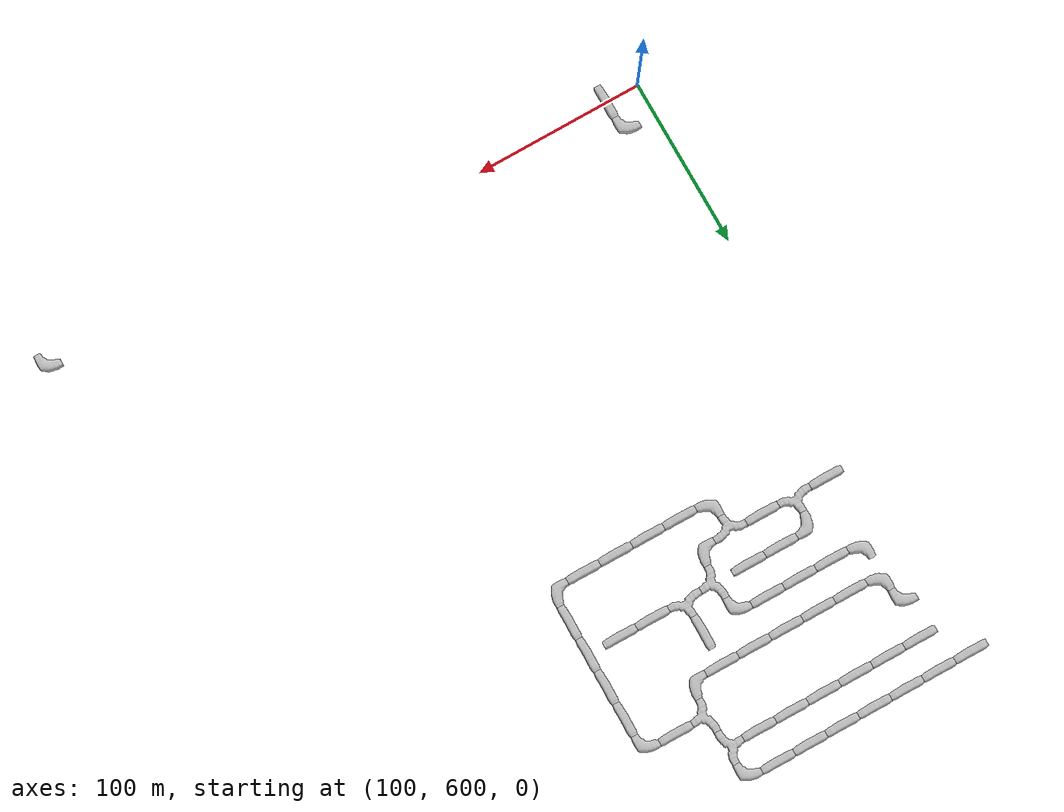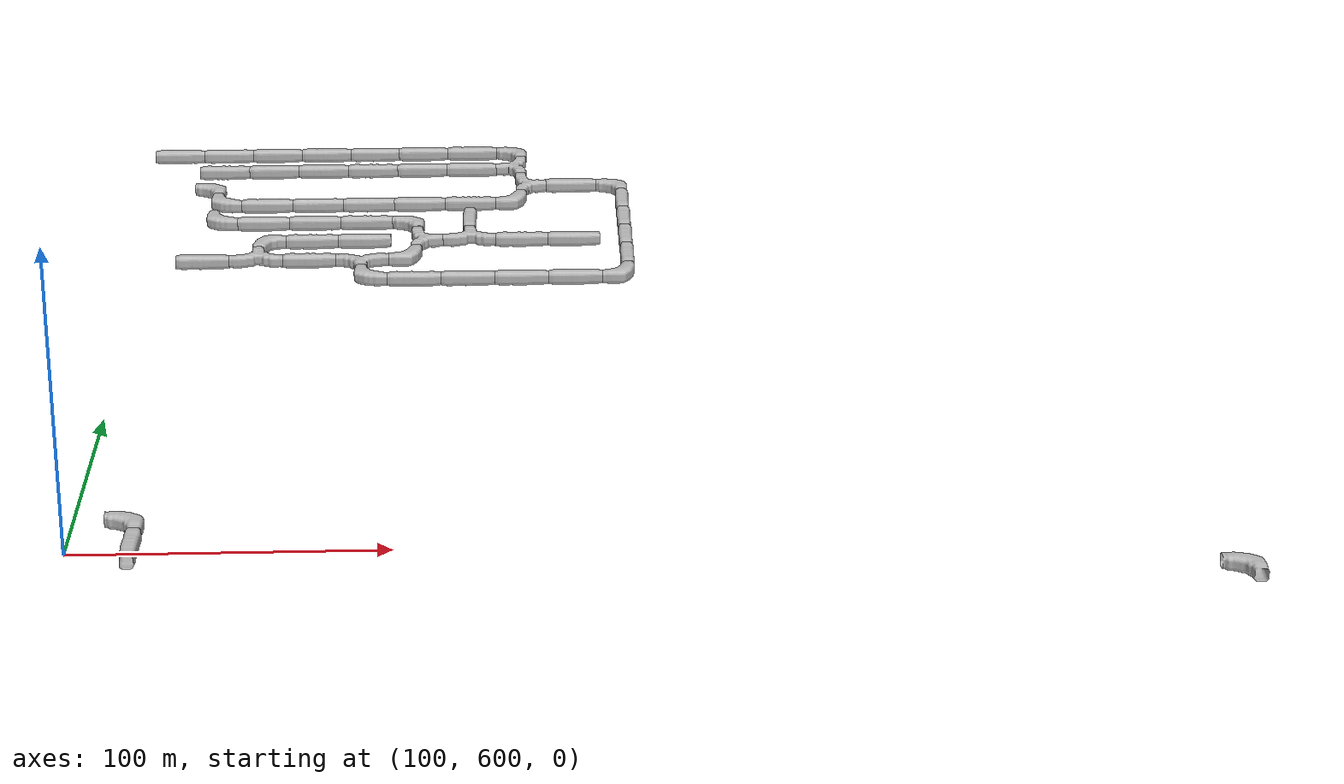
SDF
<sdf version="1.6">
 <world name="cave_32000">
  <include>
   <static>true</static>
   <name>cave_23_29</name>
   <pose>460 580 0 0 0 3.141592653589793</pose>
   <uri>model://cave_L_20m</uri>
  </include>
  <include>
   <static>true</static>
   <name>cave_5_48</name>
   <pose>100 960 0 0 0 1.5707963267948966</pose>
   <uri>model://cave_straight_20m</uri>
  </include>
  <include>
   <static>true</static>
   <name>cave_6_48</name>
   <pose>120 960 0 0 0 1.5707963267948966</pose>
   <uri>model://cave_straight_20m</uri>
  </include>
  <include>
   <static>true</static>
   <name>cave_7_48</name>
   <pose>140 960 0 0 0 1.5707963267948966</pose>
   <uri>model://cave_straight_20m</uri>
  </include>
  <include>
   <static>true</static>
   <name>cave_8_48</name>
   <pose>160 960 0 0 0 1.5707963267948966</pose>
   <uri>model://cave_straight_20m</uri>
  </include>
  <include>
   <static>true</static>
   <name>cave_9_48</name>
   <pose>180 960 0 0 0 1.5707963267948966</pose>
   <uri>model://cave_straight_20m</uri>
  </include>
  <include>
   <static>true</static>
   <name>cave_10_48</name>
   <pose>200 960 0 0 0 1.5707963267948966</pose>
   <uri>model://cave_straight_20m</uri>
  </include>
  <include>
   <static>true</static>
   <name>cave_11_48</name>
   <pose>220 960 0 0 0 1.5707963267948966</pose>
   <uri>model://cave_straight_20m</uri>
  </include>
  <include>
   <static>true</static>
   <name>cave_12_48</name>
   <pose>240 960 0 0 0 3.141592653589793</pose>
   <uri>model://cave_L_20m</uri>
  </include>
  <include>
   <static>true</static>
   <name>cave_12_47</name>
   <pose>240 940 0 0 0 1.5707963267948966</pose>
   <uri>model://cave_3way_20m</uri>
  </include>
  <include>
   <static>true</static>
   <name>cave_12_46</name>
   <pose>240 920 0 0 0 -1.5707963267948966</pose>
   <uri>model://cave_3way_20m</uri>
  </include>
  <include>
   <static>true</static>
   <name>cave_13_46</name>
   <pose>260 920 0 0 0 1.5707963267948966</pose>
   <uri>model://cave_straight_20m</uri>
  </include>
  <include>
   <static>true</static>
   <name>cave_14_46</name>
   <pose>280 920 0 0 0 3.141592653589793</pose>
   <uri>model://cave_L_20m</uri>
  </include>
  <include>
   <static>true</static>
   <name>cave_14_45</name>
   <pose>280 900 0 0 0 0.0</pose>
   <uri>model://cave_straight_20m</uri>
  </include>
  <include>
   <static>true</static>
   <name>cave_14_44</name>
   <pose>280 880 0 0 0 0.0</pose>
   <uri>model://cave_straight_20m</uri>
  </include>
  <include>
   <static>true</static>
   <name>cave_14_43</name>
   <pose>280 860 0 0 0 0.0</pose>
   <uri>model://cave_straight_20m</uri>
  </include>
  <include>
   <static>true</static>
   <name>cave_14_42</name>
   <pose>280 840 0 0 0 0.0</pose>
   <uri>model://cave_straight_20m</uri>
  </include>
  <include>
   <static>true</static>
   <name>cave_14_41</name>
   <pose>280 820 0 0 0 1.5707963267948966</pose>
   <uri>model://cave_L_20m</uri>
  </include>
  <include>
   <static>true</static>
   <name>cave_13_41</name>
   <pose>260 820 0 0 0 1.5707963267948966</pose>
   <uri>model://cave_straight_20m</uri>
  </include>
  <include>
   <static>true</static>
   <name>cave_12_41</name>
   <pose>240 820 0 0 0 1.5707963267948966</pose>
   <uri>model://cave_straight_20m</uri>
  </include>
  <include>
   <static>true</static>
   <name>cave_11_41</name>
   <pose>220 820 0 0 0 1.5707963267948966</pose>
   <uri>model://cave_straight_20m</uri>
  </include>
  <include>
   <static>true</static>
   <name>cave_10_41</name>
   <pose>200 820 0 0 0 1.5707963267948966</pose>
   <uri>model://cave_straight_20m</uri>
  </include>
  <include>
   <static>true</static>
   <name>cave_9_41</name>
   <pose>180 820 0 0 0 0.0</pose>
   <uri>model://cave_L_20m</uri>
  </include>
  <include>
   <static>true</static>
   <name>cave_9_42</name>
   <pose>180 840 0 0 0 3.141592653589793</pose>
   <uri>model://cave_3way_20m</uri>
  </include>
  <include>
   <static>true</static>
   <name>cave_10_42</name>
   <pose>200 840 0 0 0 1.5707963267948966</pose>
   <uri>model://cave_L_20m</uri>
  </include>
  <include>
   <static>true</static>
   <name>cave_10_43</name>
   <pose>200 860 0 0 0 -1.5707963267948966</pose>
   <uri>model://cave_3way_20m</uri>
  </include>
  <include>
   <static>true</static>
   <name>cave_11_43</name>
   <pose>220 860 0 0 0 0.0</pose>
   <uri>model://cave_3way_20m</uri>
  </include>
  <include>
   <static>true</static>
   <name>cave_12_43</name>
   <pose>240 860 0 0 0 1.5707963267948966</pose>
   <uri>model://cave_straight_20m</uri>
  </include>
  <include>
   <static>true</static>
   <name>cave_13_43</name>
   <pose>260 860 0 0 0 1.5707963267948966</pose>
   <uri>model://cave_straight_20m</uri>
  </include>
  <include>
   <static>true</static>
   <name>cave_11_44</name>
   <pose>220 880 0 0 0 0.0</pose>
   <uri>model://cave_straight_20m</uri>
  </include>
  <include>
   <static>true</static>
   <name>cave_10_44</name>
   <pose>200 880 0 0 0 3.141592653589793</pose>
   <uri>model://cave_L_20m</uri>
  </include>
  <include>
   <static>true</static>
   <name>cave_9_44</name>
   <pose>180 880 0 0 0 1.5707963267948966</pose>
   <uri>model://cave_straight_20m</uri>
  </include>
  <include>
   <static>true</static>
   <name>cave_8_44</name>
   <pose>160 880 0 0 0 1.5707963267948966</pose>
   <uri>model://cave_straight_20m</uri>
  </include>
  <include>
   <static>true</static>
   <name>cave_7_44</name>
   <pose>140 880 0 0 0 1.5707963267948966</pose>
   <uri>model://cave_straight_20m</uri>
  </include>
  <include>
   <static>true</static>
   <name>cave_6_44</name>
   <pose>120 880 0 0 0 0.0</pose>
   <uri>model://cave_L_20m</uri>
  </include>
  <include>
   <static>true</static>
   <name>cave_8_42</name>
   <pose>160 840 0 0 0 1.5707963267948966</pose>
   <uri>model://cave_straight_20m</uri>
  </include>
  <include>
   <static>true</static>
   <name>cave_7_42</name>
   <pose>140 840 0 0 0 0.0</pose>
   <uri>model://cave_3way_20m</uri>
  </include>
  <include>
   <static>true</static>
   <name>cave_6_42</name>
   <pose>120 840 0 0 0 1.5707963267948966</pose>
   <uri>model://cave_straight_20m</uri>
  </include>
  <include>
   <static>true</static>
   <name>cave_7_43</name>
   <pose>140 860 0 0 0 -1.5707963267948966</pose>
   <uri>model://cave_L_20m</uri>
  </include>
  <include>
   <static>true</static>
   <name>cave_8_43</name>
   <pose>160 860 0 0 0 1.5707963267948966</pose>
   <uri>model://cave_straight_20m</uri>
  </include>
  <include>
   <static>true</static>
   <name>cave_9_43</name>
   <pose>180 860 0 0 0 1.5707963267948966</pose>
   <uri>model://cave_straight_20m</uri>
  </include>
  <include>
   <static>true</static>
   <name>cave_12_45</name>
   <pose>240 900 0 0 0 1.5707963267948966</pose>
   <uri>model://cave_L_20m</uri>
  </include>
  <include>
   <static>true</static>
   <name>cave_11_45</name>
   <pose>220 900 0 0 0 1.5707963267948966</pose>
   <uri>model://cave_straight_20m</uri>
  </include>
  <include>
   <static>true</static>
   <name>cave_10_45</name>
   <pose>200 900 0 0 0 1.5707963267948966</pose>
   <uri>model://cave_straight_20m</uri>
  </include>
  <include>
   <static>true</static>
   <name>cave_9_45</name>
   <pose>180 900 0 0 0 1.5707963267948966</pose>
   <uri>model://cave_straight_20m</uri>
  </include>
  <include>
   <static>true</static>
   <name>cave_8_45</name>
   <pose>160 900 0 0 0 1.5707963267948966</pose>
   <uri>model://cave_straight_20m</uri>
  </include>
  <include>
   <static>true</static>
   <name>cave_7_45</name>
   <pose>140 900 0 0 0 1.5707963267948966</pose>
   <uri>model://cave_straight_20m</uri>
  </include>
  <include>
   <static>true</static>
   <name>cave_6_45</name>
   <pose>120 900 0 0 0 0.0</pose>
   <uri>model://cave_L_20m</uri>
  </include>
  <include>
   <static>true</static>
   <name>cave_6_46</name>
   <pose>120 920 0 0 0 3.141592653589793</pose>
   <uri>model://cave_L_20m</uri>
  </include>
  <include>
   <static>true</static>
   <name>cave_11_47</name>
   <pose>220 940 0 0 0 1.5707963267948966</pose>
   <uri>model://cave_straight_20m</uri>
  </include>
  <include>
   <static>true</static>
   <name>cave_10_47</name>
   <pose>200 940 0 0 0 1.5707963267948966</pose>
   <uri>model://cave_straight_20m</uri>
  </include>
  <include>
   <static>true</static>
   <name>cave_9_47</name>
   <pose>180 940 0 0 0 1.5707963267948966</pose>
   <uri>model://cave_straight_20m</uri>
  </include>
  <include>
   <static>true</static>
   <name>cave_8_47</name>
   <pose>160 940 0 0 0 1.5707963267948966</pose>
   <uri>model://cave_straight_20m</uri>
  </include>
  <include>
   <static>true</static>
   <name>cave_7_47</name>
   <pose>140 940 0 0 0 1.5707963267948966</pose>
   <uri>model://cave_straight_20m</uri>
  </include>
  <include>
   <static>true</static>
   <name>cave_6_47</name>
   <pose>120 940 0 0 0 1.5707963267948966</pose>
   <uri>model://cave_straight_20m</uri>
  </include>
  <include>
   <static>true</static>
   <name>cave_6_31</name>
   <pose>120 620 0 0 0 3.141592653589793</pose>
   <uri>model://cave_L_20m</uri>
  </include>
  <include>
   <static>true</static>
   <name>cave_6_30</name>
   <pose>120 600 0 0 0 0.0</pose>
   <uri>model://cave_straight_20m</uri>
  </include>
 </world>
</sdf>
